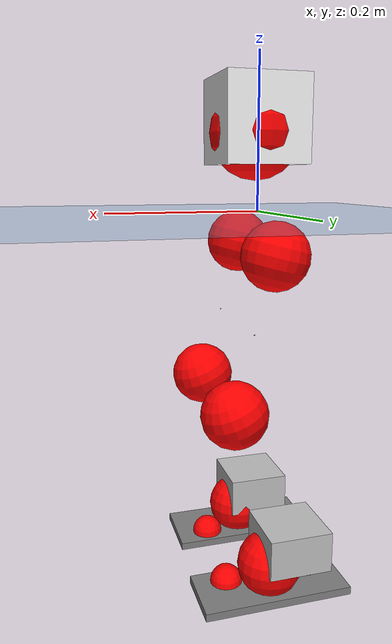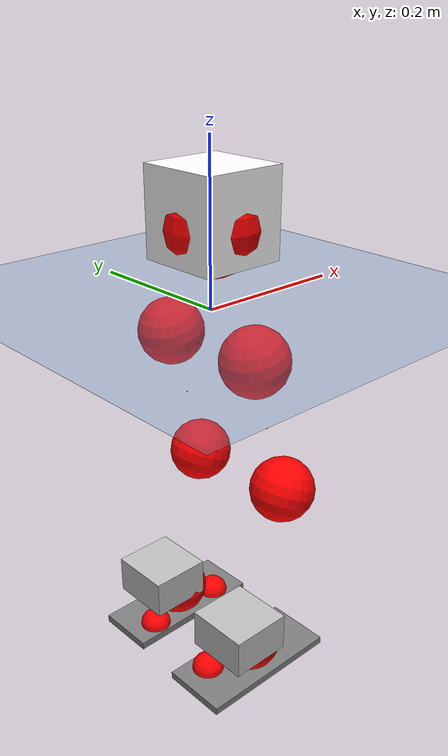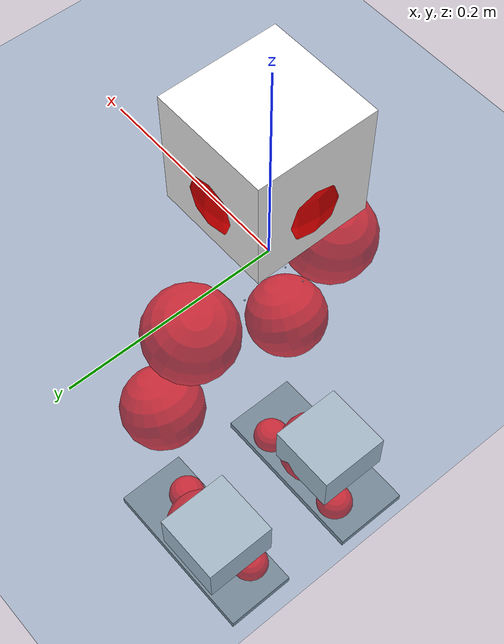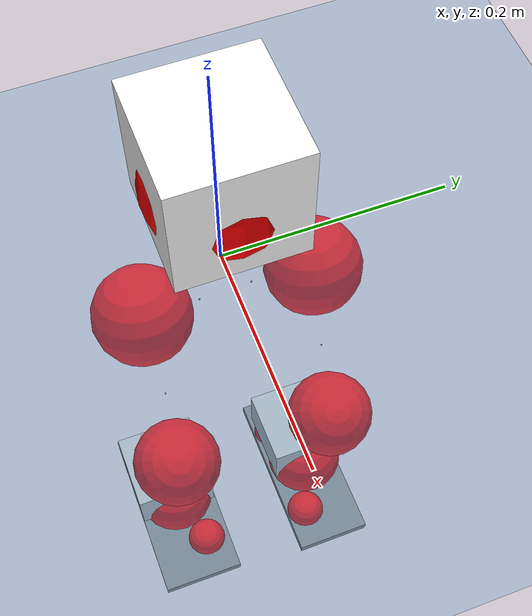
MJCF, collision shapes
<mujoco model="pi_12dof_release_v1">
  <compiler angle="radian" assetdir="assets" balanceinertia="true" inertiafromgeom="false"/>

  <option timestep="0.005" density="1.2" viscosity="2e-05"/>

  <size nkey="1"/>

  <visual>
    <quality shadowsize="8192"/>
    <map shadowclip="0.5"/>
  </visual>

  <default>
    <default class="/">
      <joint armature="0.01" damping="0.01" frictionloss="0.01"/>
      <geom contype="0" conaffinity="0" group="1" solref="-1000 -80"/>
      <site size="0.01 0.005 0.005" group="5"/>
      <general forcelimited="true" biastype="affine" gainprm="20" biasprm="0 -20 -0.5"/>
      <default class="foot">
        <geom size="0.0845 0.036 0.005" type="box" condim="6" group="4" priority="1" friction="0.9 0.2 0.2" solimp="0.015 1 0.005"/>
      </default>
      <default class="reward_collision_sphere">
        <geom group="5" rgba="1 0 0 1"/>
      </default>
    </default>
  </default>

  <asset>
    <texture type="skybox" colorspace="auto" name="//unnamed_texture_0" builtin="gradient" rgb1="0.95 0.95 0.95" rgb2="0.95 0.95 0.95" width="100" height="600"/>
    <texture type="2d" colorspace="auto" name="texplane" builtin="checker" rgb1="0.345 0.575 0.748" rgb2="0.345 0.575 0.748" markrgb="1 1 1" width="512" height="512"/>
    <material name="MatPlane" class="/" texture="texplane" texuniform="true" texrepeat="2 2" specular="0.9"/>
    <mesh name="baselink_1" class="/" file="baselink_1.STL"/>
    <mesh name="r_hip_pitch_link" class="/" file="r_hip_pitch_link.STL"/>
    <mesh name="r_hip_roll_link" class="/" file="r_hip_roll_link.STL"/>
    <mesh name="r_thigh_link" class="/" file="r_thigh_link.STL"/>
    <mesh name="r_calf_link" class="/" file="r_calf_link.STL"/>
    <mesh name="r_ankle_pitch_link" class="/" file="r_ankle_pitch_link.STL"/>
    <mesh name="r_ankle_roll_link" class="/" file="r_ankle_roll_link.STL"/>
    <mesh name="l_hip_pitch_link" class="/" file="l_hip_pitch_link.STL"/>
    <mesh name="l_hip_roll_link" class="/" file="l_hip_roll_link.STL"/>
    <mesh name="l_thigh_link" class="/" file="l_thigh_link.STL"/>
    <mesh name="l_calf_link" class="/" file="l_calf_link.STL"/>
    <mesh name="l_ankle_pitch_link" class="/" file="l_ankle_pitch_link.STL"/>
    <mesh name="l_ankle_roll_link" class="/" file="l_ankle_roll_link.STL"/>
  </asset>

  <worldbody>
    <geom name="floor" class="/" size="100 100 0.125" type="plane" group="0" material="MatPlane"/>
    <light name="toplight_shadow" class="/" pos="0 0 5" dir="0.0990148 0.0990148 -0.990148" type="directional" ambient="0.04 0.04 0.04" diffuse="0.55 0.55 0.55" specular="0.12 0.12 0.12"/>
    <light name="toplight_fill" class="/" pos="0 0 5" dir="0.0990148 0.0990148 -0.990148" type="directional" castshadow="false" ambient="0.04 0.04 0.04" diffuse="0.3 0.3 0.3" specular="0.08 0.08 0.08"/>
    <body name="trunk" pos="0.00394104 0.000350995 -0.00212536" quat="1 -0.000303725 0.000305822 0.000689551">
      <inertial pos="0.00661472 -0.00383686 0.0584832" quat="0.689148 0.0155198 0.0129626 0.724339" mass="2.85878" diaginertia="0.00407848 0.00742765 0.0261604"/>
      <joint name="//unnamed_joint_0" type="free"/>
      <geom name="//unnamed_geom_1" class="/" type="mesh" density="0" rgba="1 1 1 1" mesh="baselink_1"/>
      <geom name="//unnamed_geom_2" class="/" size="0.0542313 0.0542313 0.0542313" pos="0 0 0.116163" type="box" rgba="1 1 1 1"/>
      <geom name="//unnamed_geom_3" class="reward_collision_sphere" size="0.0596544" pos="0 0 0.101643"/>
      <site name="imu" class="/" pos="-0.000542114 0.0113008 -0.0125693" size="0.0108463"/>
      <camera name="track" class="/" pos="0 -1.91612 0" quat="0.707107 0.707107 0 0" mode="trackcom"/>
      <camera name="ego_camera" class="/" pos="0.0632832 0 0.261367" quat="-0.5 -0.5 0.5 0.5"/>
      <body name="r_hip_pitch_link" pos="-0.000456681 -0.0226717 -0.0455009" quat="0.992113 -0.00176716 -0.125336 0.000480491">
        <inertial pos="0.00559312 -0.0543769 -0.00157659" quat="-0.020592 0.704379 -0.0272057 0.709004" mass="0.446659" diaginertia="4.3772e-05 7.99389e-05 0.000526594"/>
        <joint name="r_hip_pitch_joint" class="/" pos="0 0 0" axis="0.00101652 -0.999999 -0.000162323" stiffness="0.0235579" range="-1.74369 1.29814" armature="0.0110585" damping="0.0236381" frictionloss="0.0105809"/>
        <geom name="//unnamed_geom_4" class="/" type="mesh" density="0" rgba="0.75294 0.75294 0.75294 1" mesh="r_hip_pitch_link"/>
        <geom name="//unnamed_geom_5" class="/" size="0.000542313 0.000542313 0.000542313" type="box" rgba="0.75294 0.75294 0.75294 1"/>
        <body name="r_hip_roll_link" pos="0.000131391 -0.0504519 0.00246842" quat="1 1.52814e-05 1.46281e-05 4.61769e-06">
          <inertial pos="-0.00549865 0.00131579 -0.0910939" quat="0.707609 -0.0749908 -0.0819778 0.697815" mass="0.475094" diaginertia="0.000139093 0.000229145 0.000798229"/>
          <joint name="r_hip_roll_joint" class="/" pos="0 0 0" axis="-0.999996 0.00244401 -0.00140691" range="-0.0840082 0.523534" armature="0.0125834" damping="0.0125243" frictionloss="0.0108771"/>
          <geom name="//unnamed_geom_6" class="/" type="mesh" density="0" rgba="0.75294 0.75294 0.75294 1" mesh="r_hip_roll_link"/>
          <geom name="//unnamed_geom_7" class="/" size="0.000542313 0.000542313 0.000542313" type="box" rgba="0.75294 0.75294 0.75294 1"/>
          <geom name="//unnamed_geom_8" class="reward_collision_sphere" size="0.0433851"/>
          <body name="r_thigh_link" pos="0.00167819 0.00315869 -0.101279" quat="1 2.41813e-06 -2.18619e-06 -9.34837e-06">
            <inertial pos="0.000733949 0.00233211 -0.0681454" quat="0.730048 0.683355 -0.00748037 -0.000493334" mass="0.148327" diaginertia="5.18423e-05 7.77161e-05 0.000373793"/>
            <joint name="r_thigh_joint" class="/" pos="0 0 0" axis="0.00139683 -0.00694878 -0.999975" stiffness="0.0230789" range="-0.302946 0.598609" armature="0.0121399" damping="0.0170206" frictionloss="0.0104696"/>
            <geom name="//unnamed_geom_9" class="/" type="mesh" density="0" rgba="0.75294 0.75294 0.75294 1" mesh="r_thigh_link"/>
            <geom name="//unnamed_geom_10" class="/" size="0.000542313 0.000542313 0.000542313" type="box" rgba="0.75294 0.75294 0.75294 1"/>
            <body name="r_calf_link" pos="0.00164641 -0.00510705 -0.100141" quat="0.947704 -0.00035763 0.31915 -0.000777084">
              <inertial pos="-0.00162319 0.00172705 -0.101209" quat="0.99998 -0.0016822 -0.000251487 0.00615581" mass="0.959129" diaginertia="0.00146095 0.00272781 0.00111812"/>
              <joint name="r_calf_joint" class="/" pos="0 0 0" axis="-0.000904721 -0.999999 -0.00124127" range="-1.66214 0.696067" armature="0.00791264" damping="0.0237054" frictionloss="0.00823315"/>
              <geom name="//unnamed_geom_11" class="/" type="mesh" density="0" rgba="0.75294 0.75294 0.75294 1" mesh="r_calf_link"/>
              <geom name="//unnamed_geom_12" class="/" size="0.000542313 0.000542313 0.000542313" type="box" rgba="0.75294 0.75294 0.75294 1"/>
              <geom name="//unnamed_geom_13" class="reward_collision_sphere" size="0.0433851"/>
              <body name="r_ankle_pitch_link" pos="0.00260391 -0.00210878 -0.205981" quat="0.980337 0.000820668 -0.197328 -0.000804268">
                <inertial pos="0.00456084 0.00806186 -0.00265855" quat="-0.00539171 0.703425 -0.00561003 0.710727" mass="0.231482" diaginertia="0.000126564 0.000169912 0.000765869"/>
                <joint name="r_ankle_pitch_joint" class="/" pos="0 0 0" axis="0.0123479 -0.999737 -0.0193055" stiffness="0.0196488" range="-1.26573 0.477439" armature="0.00970115" damping="0.00592597" frictionloss="0.0109267"/>
                <geom name="//unnamed_geom_14" class="/" type="mesh" density="0" rgba="0.75294 0.75294 0.75294 1" mesh="r_ankle_pitch_link"/>
                <geom name="//unnamed_geom_15" class="/" size="0.0423004 0.0433851 0.0271157" type="box" rgba="0.75294 0.75294 0.75294 1"/>
                <body name="r_ankle_roll_link" pos="0.0633837 0.00205382 0.000828045" quat="1 0.0001398 -7.69562e-06 -9.19621e-05">
                  <inertial pos="-0.0188068 0.000244045 -0.0234927" quat="0.566104 0.426521 0.437419 0.553417" mass="0.667303" diaginertia="0.00046018 0.000819765 0.00179568"/>
                  <joint name="r_ankle_roll_joint" class="/" pos="0 0 0" axis="-0.999572 0.0286458 0.00596925" stiffness="0.00308578" range="-0.175548 0.190125" armature="0.0121819" damping="0.00653253" frictionloss="0.0105638"/>
                  <geom name="//unnamed_geom_16" class="/" type="mesh" density="0" rgba="0.75294 0.75294 0.75294 1" mesh="r_ankle_roll_link"/>
                  <geom name="//unnamed_geom_17" class="/" type="mesh" rgba="0.75294 0.75294 0.75294 1" mesh="r_ankle_roll_link"/>
                  <geom name="right_foot" class="foot" size="0.101387 0.0454961 0.00501964" pos="-0.0430326 0 -0.0638898"/>
                  <geom name="//unnamed_geom_19" class="reward_collision_sphere" size="0.0433851" pos="-0.0421888 0 -0.0290408"/>
                  <geom name="//unnamed_geom_20" class="reward_collision_sphere" size="0.0216925" pos="0.0126566 0.0191612 -0.0580816"/>
                  <geom name="//unnamed_geom_21" class="reward_collision_sphere" size="0.0216925" pos="-0.101253 0.0191612 -0.0580816"/>
                  <site name="right_foot" class="foot" pos="-0.0430326 0 -0.0638898" size="0.0108463"/>
                </body>
              </body>
            </body>
          </body>
        </body>
      </body>
      <body name="l_hip_pitch_link" pos="-0.00266501 0.0249783 -0.0475101" quat="0.991848 -0.000762868 -0.127427 8.03826e-05">
        <inertial pos="-0.00322741 0.0489742 0.000290682" quat="-0.0382082 0.7059 0.0294503 0.706667" mass="0.515732" diaginertia="5.51964e-05 8.45848e-05 0.000633448"/>
        <joint name="l_hip_pitch_joint" class="/" pos="0 0 0" axis="-0.00272255 0.99993 -0.0114943" range="-1.23111 1.75077" armature="0.0102651" damping="0.0115409" frictionloss="0.011907"/>
        <geom name="//unnamed_geom_22" class="/" type="mesh" density="0" rgba="0.75294 0.75294 0.75294 1" mesh="l_hip_pitch_link"/>
        <geom name="//unnamed_geom_23" class="/" size="0.000542313 0.000542313 0.000542313" type="box" rgba="0.75294 0.75294 0.75294 1"/>
        <body name="l_hip_roll_link" pos="0.003283 0.0555548 -0.00104842" quat="0.999998 0.0011691 0.000223262 0.00128397">
          <inertial pos="-0.0020478 -0.00148908 -0.0911082" quat="0.691236 -0.0750454 -0.084446 0.713743" mass="0.509495" diaginertia="0.000147392 0.000228333 0.000856671"/>
          <joint name="l_hip_roll_joint" class="/" pos="0 0 0" axis="-0.999971 -0.0056506 -0.00506059" range="-0.550532 0.0724992" armature="0.0102278" damping="0.0314585" frictionloss="0.0116332"/>
          <geom name="//unnamed_geom_24" class="/" type="mesh" density="0" rgba="0.75294 0.75294 0.75294 1" mesh="l_hip_roll_link"/>
          <geom name="//unnamed_geom_25" class="/" size="0.000542313 0.000542313 0.000542313" type="box" rgba="0.75294 0.75294 0.75294 1"/>
          <geom name="//unnamed_geom_26" class="reward_collision_sphere" size="0.0433851"/>
          <body name="l_thigh_link" pos="0.001731 0.00198002 -0.0995711" quat="1 0.000313855 7.98738e-05 9.28755e-05">
            <inertial pos="0.000192921 -0.00190766 -0.0681695" quat="0.675231 0.737605 -3.25825e-05 0.00138396" mass="0.143163" diaginertia="5.34285e-05 7.5736e-05 0.00036692"/>
            <joint name="l_thigh_joint" class="/" pos="0 0 0" axis="-0.00206457 -0.0113829 -0.999933" range="-0.600413 0.252895" armature="0.0102168" damping="0.00469875" frictionloss="0.00978584"/>
            <geom name="//unnamed_geom_27" class="/" type="mesh" density="0" rgba="0.75294 0.75294 0.75294 1" mesh="l_thigh_link"/>
            <geom name="//unnamed_geom_28" class="/" size="0.000542313 0.000542313 0.000542313" type="box" rgba="0.75294 0.75294 0.75294 1"/>
            <body name="l_calf_link" pos="-0.000140676 0.00326737 -0.103819" quat="0.947586 -0.000170463 0.3195 -1.23665e-05">
              <inertial pos="0.000201321 0.0022148 -0.101862" quat="0.999839 -0.00534722 -0.00322454 0.0168394" mass="1.04878" diaginertia="0.00152873 0.00285093 0.00110307"/>
              <joint name="l_calf_joint" class="/" pos="0 0 0" axis="-0.00914123 0.999922 0.00851802" range="-0.696015 1.69256" armature="0.0131439" damping="0.00318607" frictionloss="0.00861014"/>
              <geom name="//unnamed_geom_29" class="/" type="mesh" density="0" rgba="0.75294 0.75294 0.75294 1" mesh="l_calf_link"/>
              <geom name="//unnamed_geom_30" class="/" size="0.000542313 0.000542313 0.000542313" type="box" rgba="0.75294 0.75294 0.75294 1"/>
              <geom name="//unnamed_geom_31" class="reward_collision_sphere" size="0.0433851"/>
              <body name="l_ankle_pitch_link" pos="0.000278736 0.00110863 -0.201685" quat="0.980213 0.000455766 -0.197946 0.000248319">
                <inertial pos="0.00359833 -0.00225127 2.51696e-05" quat="0.00127349 0.70739 9.72687e-05 0.706822" mass="0.214017" diaginertia="0.000124762 0.000175889 0.000780167"/>
                <joint name="l_ankle_pitch_joint" class="/" pos="0 0 0" axis="-0.00741085 0.99993 -0.00917545" range="-0.560246 1.3131" armature="0.0107714" damping="0.00600706" frictionloss="0.0118876"/>
                <geom name="//unnamed_geom_32" class="/" type="mesh" density="0" rgba="0.75294 0.75294 0.75294 1" mesh="l_ankle_pitch_link"/>
                <geom name="//unnamed_geom_33" class="/" size="0.0423004 0.0433851 0.0271157" type="box" rgba="0.75294 0.75294 0.75294 1"/>
                <body name="l_ankle_roll_link" pos="0.0693505 -0.00134912 -0.000679473" quat="0.999999 -0.00124453 -0.000208496 0.000284614">
                  <inertial pos="-0.0252713 0.000180615 -0.0199346" quat="0.555443 0.428194 0.43096 0.567809" mass="0.655679" diaginertia="0.000516479 0.000883817 0.00192597"/>
                  <joint name="l_ankle_roll_joint" class="/" pos="0 0 0" axis="-0.999973 -0.00626688 0.00376631" range="-0.207057 0.159899" armature="0.0113024" damping="0.0138152" frictionloss="0.0122129"/>
                  <geom name="//unnamed_geom_34" class="/" type="mesh" density="0" rgba="0.75294 0.75294 0.75294 1" mesh="l_ankle_roll_link"/>
                  <geom name="//unnamed_geom_35" class="/" type="mesh" rgba="0.75294 0.75294 0.75294 1" mesh="l_ankle_roll_link"/>
                  <geom name="left_foot" class="foot" size="0.100482 0.041745 0.0053279" pos="-0.0430326 0 -0.0638898"/>
                  <geom name="//unnamed_geom_37" class="reward_collision_sphere" size="0.0433851" pos="-0.0421888 0 -0.0290408"/>
                  <geom name="//unnamed_geom_38" class="reward_collision_sphere" size="0.0216925" pos="0.0126566 -0.0191612 -0.0580816"/>
                  <geom name="//unnamed_geom_39" class="reward_collision_sphere" size="0.0216925" pos="-0.101253 -0.0191612 -0.0580816"/>
                  <site name="left_foot" class="foot" pos="-0.0430326 0 -0.0638898" size="0.0108463"/>
                </body>
              </body>
            </body>
          </body>
        </body>
      </body>
    </body>
  </worldbody>

  <contact>
    <pair class="/" geom1="floor" geom2="right_foot" name="//unnamed_contact_1"/>
    <pair class="/" geom1="floor" geom2="left_foot" name="//unnamed_contact_0"/>
  </contact>

  <actuator>
    <general name="r_hip_pitch_joint" class="/" joint="r_hip_pitch_joint" forcerange="-20.7761 20.7761" gainprm="22.8447" biasprm="0 -22.8447 -0.529073"/>
    <general name="r_hip_roll_joint" class="/" joint="r_hip_roll_joint" forcerange="-22.8846 22.8846" gainprm="22.8447" biasprm="0 -22.8447 -0.529073"/>
    <general name="r_thigh_joint" class="/" joint="r_thigh_joint" forcerange="-23.3874 23.3874" gainprm="22.8447" biasprm="0 -22.8447 -0.529073"/>
    <general name="r_calf_joint" class="/" joint="r_calf_joint" forcerange="-20.7715 20.7715" gainprm="22.8447" biasprm="0 -22.8447 -0.529073"/>
    <general name="r_ankle_pitch_joint" class="/" joint="r_ankle_pitch_joint" forcerange="-24.8202 24.8202" gainprm="22.8447" biasprm="0 -22.8447 -0.529073"/>
    <general name="r_ankle_roll_joint" class="/" joint="r_ankle_roll_joint" forcerange="-20.7022 20.7022" gainprm="22.8447" biasprm="0 -22.8447 -0.529073"/>
    <general name="l_hip_pitch_joint" class="/" joint="l_hip_pitch_joint" forcerange="-22.3853 22.3853" gainprm="22.8447" biasprm="0 -22.8447 -0.529073"/>
    <general name="l_hip_roll_joint" class="/" joint="l_hip_roll_joint" forcerange="-21.7257 21.7257" gainprm="22.8447" biasprm="0 -22.8447 -0.529073"/>
    <general name="l_thigh_joint" class="/" joint="l_thigh_joint" forcerange="-22.8816 22.8816" gainprm="22.8447" biasprm="0 -22.8447 -0.529073"/>
    <general name="l_calf_joint" class="/" joint="l_calf_joint" forcerange="-18.5996 18.5996" gainprm="22.8447" biasprm="0 -22.8447 -0.529073"/>
    <general name="l_ankle_pitch_joint" class="/" joint="l_ankle_pitch_joint" forcerange="-22.6101 22.6101" gainprm="22.8447" biasprm="0 -22.8447 -0.529073"/>
    <general name="l_ankle_roll_joint" class="/" joint="l_ankle_roll_joint" forcerange="-23.5083 23.5083" gainprm="22.8447" biasprm="0 -22.8447 -0.529073"/>
  </actuator>

  <sensor>
    <gyro site="imu" name="imu_angular_velocity"/>
    <velocimeter site="imu" name="imu_linear_velocity"/>
    <framelinvel objtype="site" objname="left_foot" name="left_foot_global_linear_velocity"/>
    <framelinvel objtype="site" objname="right_foot" name="right_foot_global_linear_velocity"/>
  </sensor>

  <keyframe>
    <key name="home" qpos="0 0 0.291 1 0 0 0 0.4 0 0 -0.8 0.4 0 -0.4 0 0 0.8 -0.4 0"/>
  </keyframe>
</mujoco>
